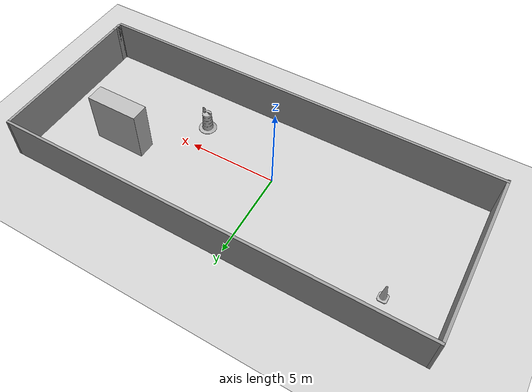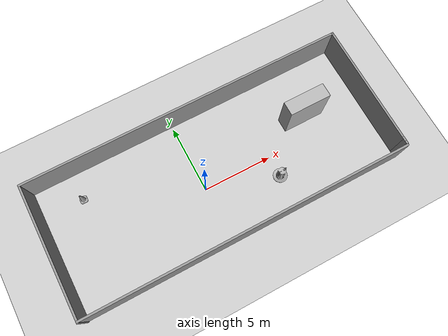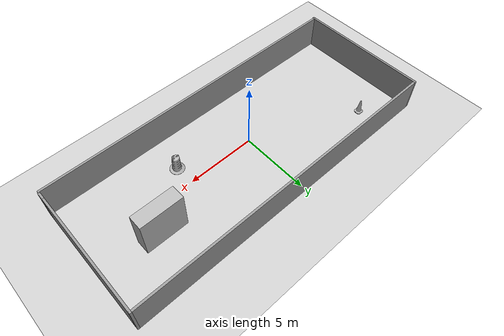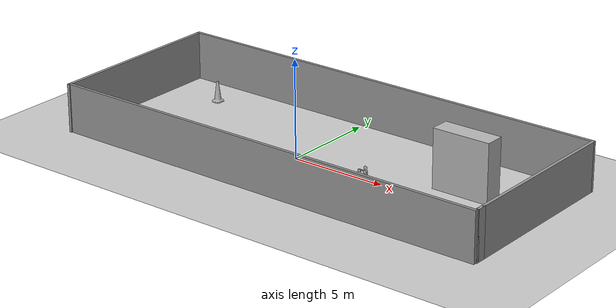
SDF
<sdf version="1.7">
 <world name="default">
  <light name="sun" type="directional">
   <pose>0 0 10 0 -0 0</pose>
   <diffuse>0.8 0.8 0.8 1</diffuse>
   <specular>0.2 0.2 0.2 1</specular>
   <attenuation>
    <range>1000</range>
    <constant>0.9</constant>
    <linear>0.01</linear>
    <quadratic>0.001</quadratic>
   </attenuation>
   <direction>-0.5 0.1 -0.9</direction>
   <spot><inner_angle>0</inner_angle><outer_angle>0</outer_angle><falloff>0</falloff></spot>
  </light>
  <model name="ground_plane">
   <static>1</static>
   <link name="link">
    <collision name="collision">
     <geometry><plane><normal>0 0 1</normal><size>100 100</size></plane></geometry>
     <surface>
      <contact><collide_bitmask>65535</collide_bitmask></contact>
      <friction><ode><mu>100</mu><mu2>50</mu2></ode></friction>
     </surface>
    </collision>
    <visual name="visual">
     <cast_shadows>0</cast_shadows>
     <geometry><plane><normal>0 0 1</normal><size>100 100</size></plane></geometry>
     <material>
      <script><uri>file://media/materials/scripts/gazebo.material</uri><name>Gazebo/Grey</name></script>
     </material>
    </visual>
   </link>
  </model>
  <gravity>0 0 -9.8</gravity>
  <magnetic_field>6e-06 2.3e-05 -4.2e-05</magnetic_field>
  <atmosphere type="adiabatic"/>
  <physics type="ode">
   <max_step_size>0.001</max_step_size>
   <real_time_factor>1</real_time_factor>
   <real_time_update_rate>1000</real_time_update_rate>
  </physics>
  <scene><ambient>0.4 0.4 0.4 1</ambient><background>0.7 0.7 0.7 1</background><shadows>1</shadows></scene>
  <spherical_coordinates>
   <surface_model>EARTH_WGS84</surface_model>
   <latitude_deg>0</latitude_deg>
   <longitude_deg>0</longitude_deg>
   <elevation>0</elevation>
   <heading_deg>0</heading_deg>
  </spherical_coordinates>
  <model name="room">
   <pose>1.1138 0.598264 0 0 -0 0</pose>
   <link name="Wall_0">
    <collision name="Wall_0_Collision">
     <geometry><box><size>23.7035 0.15 2.5</size></box></geometry>
     <pose>0 0 1.25 0 -0 0</pose>
    </collision>
    <visual name="Wall_0_Visual">
     <pose>0 0 1.25 0 -0 0</pose>
     <geometry><box><size>23.7035 0.15 2.5</size></box></geometry>
     <material>
      <script><uri>file://media/materials/scripts/gazebo.material</uri><name>Gazebo/Grey</name></script>
      <ambient>1 1 1 1</ambient>
     </material>
     <meta><layer>0</layer></meta>
    </visual>
    <pose>-0.023262 -4.675 0 0 -0 3.14159</pose>
   </link>
   <link name="Wall_1">
    <collision name="Wall_1_Collision">
     <geometry><box><size>9.59305 0.15 2.5</size></box></geometry>
     <pose>0 0 1.25 0 -0 0</pose>
    </collision>
    <visual name="Wall_1_Visual">
     <pose>0 0 1.25 0 -0 0</pose>
     <geometry><box><size>9.59305 0.15 2.5</size></box></geometry>
     <material>
      <script><uri>file://media/materials/scripts/gazebo.material</uri><name>Gazebo/Grey</name></script>
      <ambient>1 1 1 1</ambient>
     </material>
     <meta><layer>0</layer></meta>
    </visual>
    <pose>-11.8 0 0 0 -0 1.5708</pose>
   </link>
   <link name="Wall_2">
    <collision name="Wall_2_Collision">
     <geometry><box><size>23.7502 0.15 2.5</size></box></geometry>
     <pose>0 0 1.25 0 -0 0</pose>
    </collision>
    <visual name="Wall_2_Visual">
     <pose>0 0 1.25 0 -0 0</pose>
     <geometry><box><size>23.7502 0.15 2.5</size></box></geometry>
     <material>
      <script><uri>file://media/materials/scripts/gazebo.material</uri><name>Gazebo/Grey</name></script>
      <ambient>1 1 1 1</ambient>
     </material>
     <meta><layer>0</layer></meta>
    </visual>
    <pose>0 4.72152 0 0 -0 0</pose>
   </link>
   <link name="Wall_3">
    <collision name="Wall_3_Collision">
     <geometry><box><size>9 0.15 2.5</size></box></geometry>
     <pose>0 0 1.25 0 -0 0</pose>
    </collision>
    <visual name="Wall_3_Visual">
     <pose>0 0 1.25 0 -0 0</pose>
     <geometry><box><size>9 0.15 2.5</size></box></geometry>
     <material>
      <script><uri>file://media/materials/scripts/gazebo.material</uri><name>Gazebo/Grey</name></script>
      <ambient>1 1 1 1</ambient>
     </material>
     <meta><layer>0</layer></meta>
    </visual>
    <pose>11.8 0.296524 0 0 -0 -1.5708</pose>
   </link>
   <link name="Wall_4">
    <collision name="Wall_4_Collision">
     <geometry><box><size>0.5 0.15 2.5</size></box></geometry>
     <pose>0 0 1.25 0 -0 0</pose>
    </collision>
    <visual name="Wall_4_Visual">
     <pose>0 0 1.25 0 -0 0</pose>
     <geometry><box><size>0.5 0.15 2.5</size></box></geometry>
     <material>
      <script><uri>file://media/materials/scripts/gazebo.material</uri><name>Gazebo/Grey</name></script>
      <ambient>1 1 1 1</ambient>
     </material>
     <meta><layer>0</layer></meta>
    </visual>
    <pose>11.8 -4.30348 0 0 -0 -1.5708</pose>
   </link>
   <link name="Wall_5">
    <collision name="Wall_5_Collision">
     <geometry><box><size>0.15 0.25 2.5</size></box></geometry>
     <pose>0 0 1.25 0 -0 0</pose>
    </collision>
    <visual name="Wall_5_Visual">
     <pose>0 0 1.25 0 -0 0</pose>
     <geometry><box><size>0.15 0.25 2.5</size></box></geometry>
     <material>
      <script><uri>file://media/materials/scripts/gazebo.material</uri><name>Gazebo/Grey</name></script>
      <ambient>1 1 1 1</ambient>
     </material>
     <meta><layer>0</layer></meta>
    </visual>
    <pose>11.8 -4.47848 0 0 -0 0</pose>
   </link>
   <static>1</static>
  </model>
  <model name="Construction Barrel">
   <link name="link">
    <inertial>
     <pose>0 0 0.4 0 -0 0</pose>
     <mass>500</mass>
     <inertia><ixx>51.2096</ixx><iyy>51.2096</iyy><izz>25</izz><ixy>0</ixy><ixz>0</ixz><iyz>0</iyz></inertia>
    </inertial>
    <collision name="collision">
     <geometry><mesh><uri>model://construction_barrel/meshes/construction_barrel.dae</uri></mesh></geometry>
    </collision>
    <visual name="visual">
     <geometry><mesh><uri>model://construction_barrel/meshes/construction_barrel.dae</uri></mesh></geometry>
    </visual>
   </link>
   <pose>5.06147 -1.49948 1e-06 2e-06 3e-06 -6e-06</pose>
  </model>
  <model name="Construction Cone">
   <link name="link">
    <collision name="collision">
     <geometry>
      <mesh><scale>10 10 10</scale><uri>model://construction_cone/meshes/construction_cone.dae</uri></mesh>
     </geometry>
    </collision>
    <visual name="visual">
     <geometry>
      <mesh><scale>10 10 10</scale><uri>model://construction_cone/meshes/construction_cone.dae</uri></mesh>
     </geometry>
    </visual>
    <inertial>
     <inertia><ixx>1</ixx><ixy>0</ixy><ixz>0</ixz><iyy>1</iyy><iyz>0</iyz><izz>1</izz></inertia>
     <mass>1</mass>
    </inertial>
   </link>
   <pose>-7.73287 3.32925 -0 0 -0 0</pose>
  </model>
  <model name="brick_box_3x1x3">
   <static>1</static>
   <link name="chassis">
    <pose>0 0 1.5 0 -0 0</pose>
    <collision name="collision"><geometry><box><size>3 1 3</size></box></geometry></collision>
    <visual name="visual">
     <geometry><mesh><uri>model://brick_box_3x1x3/meshes/simple_box.dae</uri><scale>3 1 3</scale></mesh></geometry>
     <material>
      <script>
       <uri>model://brick_box_3x1x3/materials/scripts</uri>
       <uri>model://brick_box_3x1x3/materials/textures</uri>
       <name>BrickBox/Diffuse</name>
      </script>
     </material>
    </visual>
   </link>
   <pose>8.53478 1.66817 0 0 -0 0</pose>
  </model>
 </world>
</sdf>
